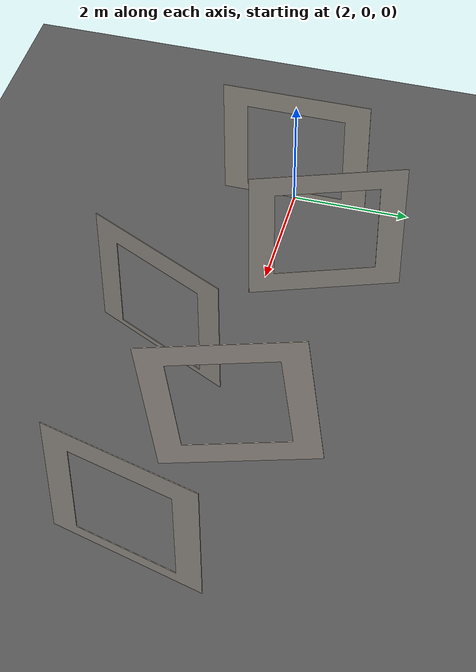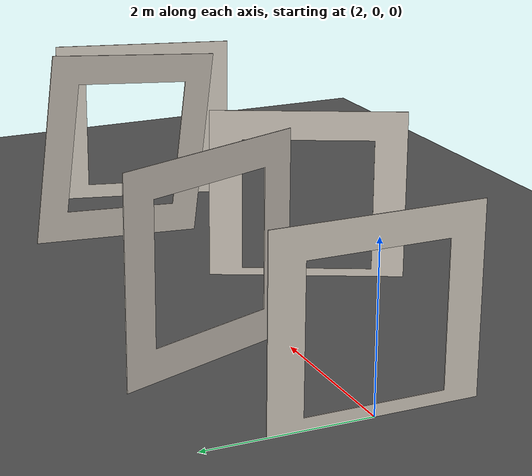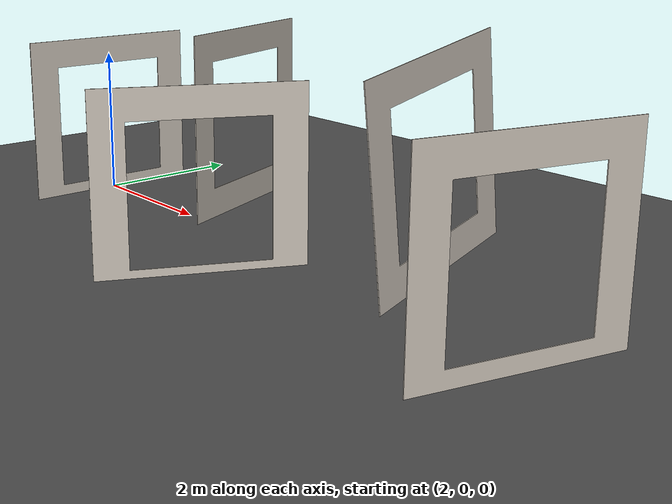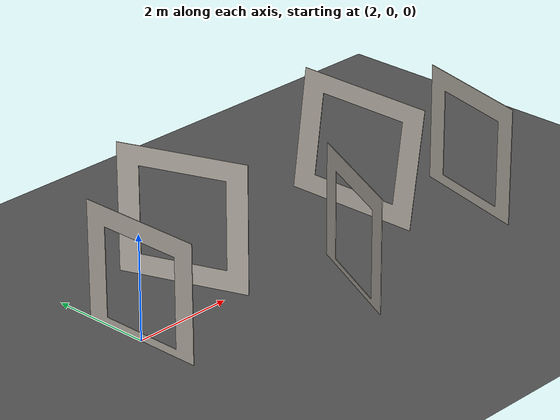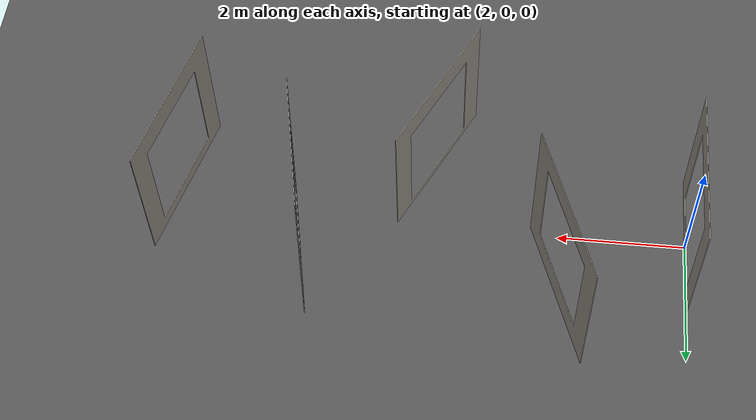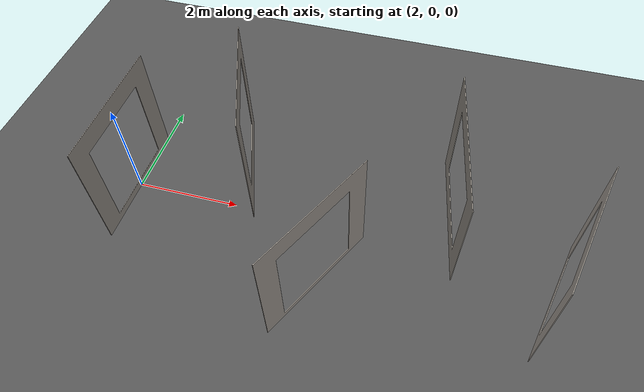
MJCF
<mujoco model="drone_racing">
<compiler angle="radian"/>
<asset>
    <mesh name="georgia_tech_gate"
          file="georgia_tech_gate/georgia_tech_gate_textured.obj"/>
    <texture name="georgia_tech_gate_design" type="2d"
             file="georgia_tech_gate/gate_design.png"/>
    <material name="georgia_tech_gate_material"
              texture="georgia_tech_gate_design"
              texrepeat="1 1" texuniform="false"
              specular="0" shininess="0"/>
</asset>
<visual>
    <global azimuth="135" elevation="-20"/>
    <headlight ambient="0.4 0.4 0.4" diffuse="0.8 0.8 0.8"/>
</visual>
<worldbody>
<light pos="0 0 8" dir="0 0 -1"/>
<camera name="race_camera" pos="-6 -6 4"
        xyaxes="0.479 -0.878 0 0.205 0.112 0.972"/>

<!-- Large grey floor -->
<geom
    name="race_floor"
    type="plane"
    pos="0 0 0.01"
    size="0 0 0.1"
    rgba="0.32 0.32 0.32 1"
/>

<!-- Gate poses are overwritten from GATES when drone_test.py runs. -->
<body name="gate1" pos="2.0 0.0 1.0" euler="0 0 0">
    <geom name="gate1_georgia_tech_mesh" type="mesh"
          mesh="georgia_tech_gate" euler="0 0 1.57079632679"
          material="georgia_tech_gate_material"/>
</body>
<body name="gate2" pos="4.0 1.0 1.25" euler="0 0 0.35">
    <geom name="gate2_georgia_tech_mesh" type="mesh"
          mesh="georgia_tech_gate" euler="0 0 1.57079632679"
          material="georgia_tech_gate_material"/>
</body>
<body name="gate3" pos="6.0 -1.2 0.95" euler="0 0 -0.45">
    <geom name="gate3_georgia_tech_mesh" type="mesh"
          mesh="georgia_tech_gate" euler="0 0 1.57079632679"
          material="georgia_tech_gate_material"/>
</body>
<body name="gate4" pos="8.0 0.5 1.4" euler="0.12 0 0.20">
    <geom name="gate4_georgia_tech_mesh" type="mesh"
          mesh="georgia_tech_gate" euler="0 0 1.57079632679"
          material="georgia_tech_gate_material"/>
</body>
<body name="gate5" pos="10.0 -0.5 1.05" euler="0 0 -0.25">
    <geom name="gate5_georgia_tech_mesh" type="mesh"
          mesh="georgia_tech_gate" euler="0 0 1.57079632679"
          material="georgia_tech_gate_material"/>
</body>
</worldbody>
</mujoco>
